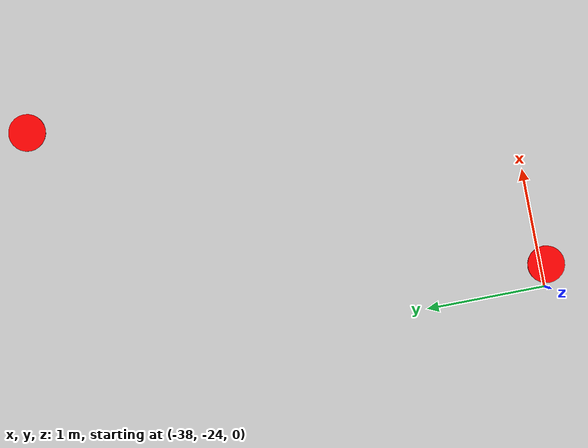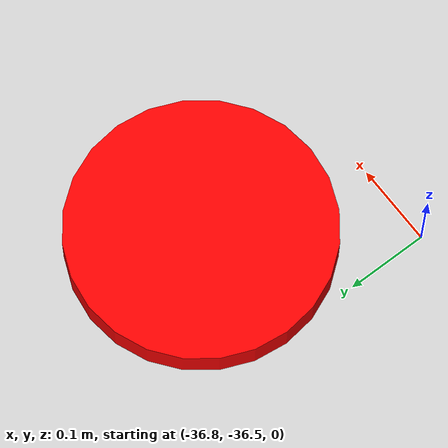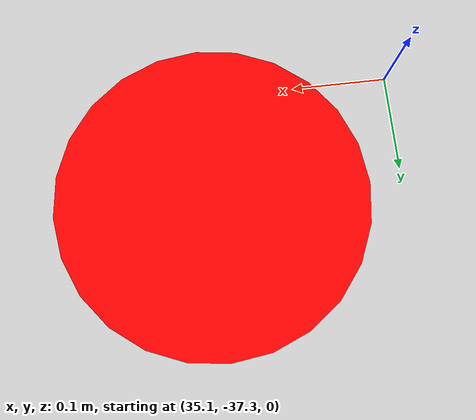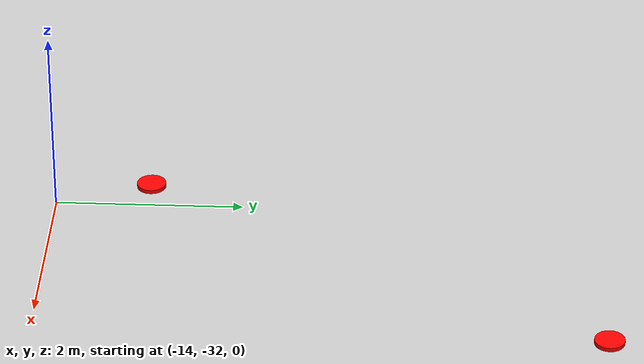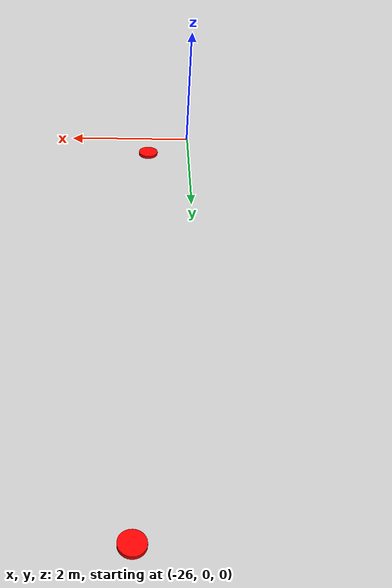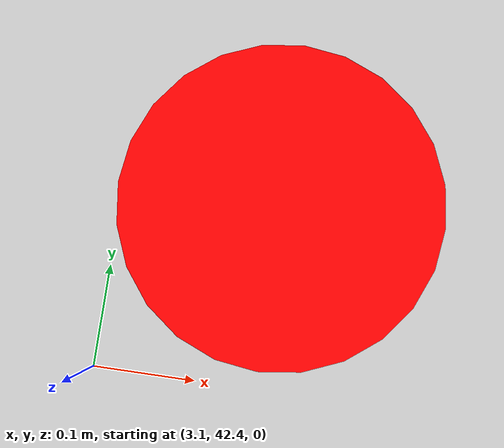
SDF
<?xml version='1.0' encoding='UTF-8'?>
<sdf version="1.7">
  <world name="disc_world">

    <plugin name="mrs_gazebo_static_transform_republisher_plugin"
            filename="libMrsGazeboCommonResources_StaticTransformRepublisher.so"/>

    <spherical_coordinates>
      <surface_model>EARTH_WGS84</surface_model>
      <latitude_deg>47.3977</latitude_deg>
      <longitude_deg>8.54559</longitude_deg>
      <elevation>0</elevation>
      <heading_deg>0</heading_deg>
    </spherical_coordinates>

    <physics name="default_physics" default="0" type="ode">
      <ode>
        <solver>
          <type>quick</type>
          <iters>10</iters>
          <sor>1.3</sor>
          <use_dynamic_moi_rescaling>0</use_dynamic_moi_rescaling>
        </solver>
        <constraints>
          <cfm>0</cfm>
          <erp>0.2</erp>
          <contact_max_correcting_vel>1000</contact_max_correcting_vel>
          <contact_surface_layer>0.001</contact_surface_layer>
        </constraints>
      </ode>
      <max_step_size>0.004</max_step_size>
      <real_time_factor>1</real_time_factor>
      <real_time_update_rate>250</real_time_update_rate>
    </physics>

    <scene>
      <shadows>false</shadows>
      <ambient>0.4 0.4 0.4 1</ambient>
      <background>0.7 0.7 0.7 1</background>
    </scene>

    <light name="sun" type="directional">
      <pose>0 0 1000 0.4 0.2 0</pose>
      <diffuse>1 1 1 1</diffuse>
      <specular>0.6 0.6 0.6 1</specular>
      <direction>0.1 0.1 -0.9</direction>
      <attenuation>
        <range>20</range>
        <constant>0.5</constant>
        <linear>0.01</linear>
        <quadratic>0.001</quadratic>
      </attenuation>
      <cast_shadows>1</cast_shadows>
    </light>

    <!-- Ground plane -->
    <model name="ground_plane">
      <static>1</static>
      <link name="link">
        <collision name="collision">
          <pose>0 0 0 0 0 0</pose>
          <geometry>
            <plane>
              <normal>0 0 1</normal>
              <size>250 250</size>
            </plane>
          </geometry>
          <surface>
            <friction>
              <ode><mu>1</mu><mu2>1</mu2></ode>
            </friction>
          </surface>
          <max_contacts>10</max_contacts>
        </collision>
        <visual name="visual">
          <pose>0 0 0 0 0 0</pose>
          <cast_shadows>0</cast_shadows>
          <geometry>
            <plane>
              <normal>0 0 1</normal>
              <size>250 250</size>
            </plane>
          </geometry>
          <material>
            <script>
              <uri>file://media/materials/scripts/gazebo.material</uri>
              <name>Gazebo/Grey</name>
            </script>
          </material>
        </visual>
      </link>
    </model>

    <plugin name="mrs_gazebo_rviz_cam_synchronizer"
            filename="libMrsGazeboCommonResources_RvizCameraSynchronizer.so">
      <target_frame_id>gazebo_user_camera</target_frame_id>
      <world_origin_frame_id>uav1/gps_origin</world_origin_frame_id>
      <frame_to_follow>uav1</frame_to_follow>
    </plugin>

    <gravity>0 0 -9.8066</gravity>
    <magnetic_field>6e-06 2.3e-05 -4.2e-05</magnetic_field>
    <atmosphere type="adiabatic"/>
    <wind/>

    <gui fullscreen="0">
      <camera name="camera">
        <pose>0 0 150 0 1.5707 0</pose>
        <view_controller>orbit</view_controller>
        <projection_type>perspective</projection_type>
      </camera>
    </gui>

    <!-- 25 Randomly Scattered Discs (seed=42, 100x100m area) -->

    <model name="disc_1">
      <static>true</static>
      <pose>12.55 -42.75 0.01 0 0 0</pose>
      <link name="link">
        <collision name="collision">
          <pose>0 0 0 0 0 0</pose>
          <geometry>
            <cylinder>
              <radius>0.15678</radius>
              <length>0.0579</length>
            </cylinder>
          </geometry>
          <max_contacts>10</max_contacts>
          <surface>
            <contact><ode/></contact>
            <bounce/>
            <friction><torsional><ode/></torsional><ode/></friction>
          </surface>
        </collision>
        <visual name="visual">
          <geometry>
            <cylinder>
              <radius>0.15678</radius>
              <length>0.0579</length>
            </cylinder>
          </geometry>
          <material>
            <ambient>1 0 0 1</ambient>
            <diffuse>1 0 0 1</diffuse>
            <specular>0.1 0.1 0.1 1</specular>
            <emissive>0.3 0 0 1</emissive>
          </material>
        </visual>
        <self_collide>0</self_collide>
        <enable_wind>0</enable_wind>
        <kinematic>0</kinematic>
      </link>
    </model>

    <model name="disc_2">
      <static>true</static>
      <pose>-20.25 -24.91 0.01 0 0 0</pose>
      <link name="link">
        <collision name="collision">
          <pose>0 0 0 0 0 0</pose>
          <geometry>
            <cylinder>
              <radius>0.15678</radius>
              <length>0.0579</length>
            </cylinder>
          </geometry>
          <max_contacts>10</max_contacts>
          <surface>
            <contact><ode/></contact>
            <bounce/>
            <friction><torsional><ode/></torsional><ode/></friction>
          </surface>
        </collision>
        <visual name="visual">
          <geometry>
            <cylinder>
              <radius>0.15678</radius>
              <length>0.0579</length>
            </cylinder>
          </geometry>
          <material>
            <ambient>1 0 0 1</ambient>
            <diffuse>1 0 0 1</diffuse>
            <specular>0.1 0.1 0.1 1</specular>
            <emissive>0.3 0 0 1</emissive>
          </material>
        </visual>
        <self_collide>0</self_collide>
        <enable_wind>0</enable_wind>
        <kinematic>0</kinematic>
      </link>
    </model>

    <model name="disc_3">
      <static>true</static>
      <pose>21.28 15.9 0.01 0 0 0</pose>
      <link name="link">
        <collision name="collision">
          <pose>0 0 0 0 0 0</pose>
          <geometry>
            <cylinder>
              <radius>0.15678</radius>
              <length>0.0579</length>
            </cylinder>
          </geometry>
          <max_contacts>10</max_contacts>
          <surface>
            <contact><ode/></contact>
            <bounce/>
            <friction><torsional><ode/></torsional><ode/></friction>
          </surface>
        </collision>
        <visual name="visual">
          <geometry>
            <cylinder>
              <radius>0.15678</radius>
              <length>0.0579</length>
            </cylinder>
          </geometry>
          <material>
            <ambient>1 0 0 1</ambient>
            <diffuse>1 0 0 1</diffuse>
            <specular>0.1 0.1 0.1 1</specular>
            <emissive>0.3 0 0 1</emissive>
          </material>
        </visual>
        <self_collide>0</self_collide>
        <enable_wind>0</enable_wind>
        <kinematic>0</kinematic>
      </link>
    </model>

    <model name="disc_4">
      <static>true</static>
      <pose>35.3 -37.18 0.01 0 0 0</pose>
      <link name="link">
        <collision name="collision">
          <pose>0 0 0 0 0 0</pose>
          <geometry>
            <cylinder>
              <radius>0.15678</radius>
              <length>0.0579</length>
            </cylinder>
          </geometry>
          <max_contacts>10</max_contacts>
          <surface>
            <contact><ode/></contact>
            <bounce/>
            <friction><torsional><ode/></torsional><ode/></friction>
          </surface>
        </collision>
        <visual name="visual">
          <geometry>
            <cylinder>
              <radius>0.15678</radius>
              <length>0.0579</length>
            </cylinder>
          </geometry>
          <material>
            <ambient>1 0 0 1</ambient>
            <diffuse>1 0 0 1</diffuse>
            <specular>0.1 0.1 0.1 1</specular>
            <emissive>0.3 0 0 1</emissive>
          </material>
        </visual>
        <self_collide>0</self_collide>
        <enable_wind>0</enable_wind>
        <kinematic>0</kinematic>
      </link>
    </model>

    <model name="disc_5">
      <static>true</static>
      <pose>-7.03 -42.32 0.01 0 0 0</pose>
      <link name="link">
        <collision name="collision">
          <pose>0 0 0 0 0 0</pose>
          <geometry>
            <cylinder>
              <radius>0.15678</radius>
              <length>0.0579</length>
            </cylinder>
          </geometry>
          <max_contacts>10</max_contacts>
          <surface>
            <contact><ode/></contact>
            <bounce/>
            <friction><torsional><ode/></torsional><ode/></friction>
          </surface>
        </collision>
        <visual name="visual">
          <geometry>
            <cylinder>
              <radius>0.15678</radius>
              <length>0.0579</length>
            </cylinder>
          </geometry>
          <material>
            <ambient>1 0 0 1</ambient>
            <diffuse>1 0 0 1</diffuse>
            <specular>0.1 0.1 0.1 1</specular>
            <emissive>0.3 0 0 1</emissive>
          </material>
        </visual>
        <self_collide>0</self_collide>
        <enable_wind>0</enable_wind>
        <kinematic>0</kinematic>
      </link>
    </model>

    <model name="disc_6">
      <static>true</static>
      <pose>-25.32 0.48 0.01 0 0 0</pose>
      <link name="link">
        <collision name="collision">
          <pose>0 0 0 0 0 0</pose>
          <geometry>
            <cylinder>
              <radius>0.15678</radius>
              <length>0.0579</length>
            </cylinder>
          </geometry>
          <max_contacts>10</max_contacts>
          <surface>
            <contact><ode/></contact>
            <bounce/>
            <friction><torsional><ode/></torsional><ode/></friction>
          </surface>
        </collision>
        <visual name="visual">
          <geometry>
            <cylinder>
              <radius>0.15678</radius>
              <length>0.0579</length>
            </cylinder>
          </geometry>
          <material>
            <ambient>1 0 0 1</ambient>
            <diffuse>1 0 0 1</diffuse>
            <specular>0.1 0.1 0.1 1</specular>
            <emissive>0.3 0 0 1</emissive>
          </material>
        </visual>
        <self_collide>0</self_collide>
        <enable_wind>0</enable_wind>
        <kinematic>0</kinematic>
      </link>
    </model>

    <model name="disc_7">
      <static>true</static>
      <pose>-42.61 -27.1 0.01 0 0 0</pose>
      <link name="link">
        <collision name="collision">
          <pose>0 0 0 0 0 0</pose>
          <geometry>
            <cylinder>
              <radius>0.15678</radius>
              <length>0.0579</length>
            </cylinder>
          </geometry>
          <max_contacts>10</max_contacts>
          <surface>
            <contact><ode/></contact>
            <bounce/>
            <friction><torsional><ode/></torsional><ode/></friction>
          </surface>
        </collision>
        <visual name="visual">
          <geometry>
            <cylinder>
              <radius>0.15678</radius>
              <length>0.0579</length>
            </cylinder>
          </geometry>
          <material>
            <ambient>1 0 0 1</ambient>
            <diffuse>1 0 0 1</diffuse>
            <specular>0.1 0.1 0.1 1</specular>
            <emissive>0.3 0 0 1</emissive>
          </material>
        </visual>
        <self_collide>0</self_collide>
        <enable_wind>0</enable_wind>
        <kinematic>0</kinematic>
      </link>
    </model>

    <model name="disc_8">
      <static>true</static>
      <pose>13.49 4.04 0.01 0 0 0</pose>
      <link name="link">
        <collision name="collision">
          <pose>0 0 0 0 0 0</pose>
          <geometry>
            <cylinder>
              <radius>0.15678</radius>
              <length>0.0579</length>
            </cylinder>
          </geometry>
          <max_contacts>10</max_contacts>
          <surface>
            <contact><ode/></contact>
            <bounce/>
            <friction><torsional><ode/></torsional><ode/></friction>
          </surface>
        </collision>
        <visual name="visual">
          <geometry>
            <cylinder>
              <radius>0.15678</radius>
              <length>0.0579</length>
            </cylinder>
          </geometry>
          <material>
            <ambient>1 0 0 1</ambient>
            <diffuse>1 0 0 1</diffuse>
            <specular>0.1 0.1 0.1 1</specular>
            <emissive>0.3 0 0 1</emissive>
          </material>
        </visual>
        <self_collide>0</self_collide>
        <enable_wind>0</enable_wind>
        <kinematic>0</kinematic>
      </link>
    </model>

    <model name="disc_9">
      <static>true</static>
      <pose>-25.16 8.03 0.01 0 0 0</pose>
      <link name="link">
        <collision name="collision">
          <pose>0 0 0 0 0 0</pose>
          <geometry>
            <cylinder>
              <radius>0.15678</radius>
              <length>0.0579</length>
            </cylinder>
          </geometry>
          <max_contacts>10</max_contacts>
          <surface>
            <contact><ode/></contact>
            <bounce/>
            <friction><torsional><ode/></torsional><ode/></friction>
          </surface>
        </collision>
        <visual name="visual">
          <geometry>
            <cylinder>
              <radius>0.15678</radius>
              <length>0.0579</length>
            </cylinder>
          </geometry>
          <material>
            <ambient>1 0 0 1</ambient>
            <diffuse>1 0 0 1</diffuse>
            <specular>0.1 0.1 0.1 1</specular>
            <emissive>0.3 0 0 1</emissive>
          </material>
        </visual>
        <self_collide>0</self_collide>
        <enable_wind>0</enable_wind>
        <kinematic>0</kinematic>
      </link>
    </model>

    <model name="disc_10">
      <static>true</static>
      <pose>27.85 -44.42 0.01 0 0 0</pose>
      <link name="link">
        <collision name="collision">
          <pose>0 0 0 0 0 0</pose>
          <geometry>
            <cylinder>
              <radius>0.15678</radius>
              <length>0.0579</length>
            </cylinder>
          </geometry>
          <max_contacts>10</max_contacts>
          <surface>
            <contact><ode/></contact>
            <bounce/>
            <friction><torsional><ode/></torsional><ode/></friction>
          </surface>
        </collision>
        <visual name="visual">
          <geometry>
            <cylinder>
              <radius>0.15678</radius>
              <length>0.0579</length>
            </cylinder>
          </geometry>
          <material>
            <ambient>1 0 0 1</ambient>
            <diffuse>1 0 0 1</diffuse>
            <specular>0.1 0.1 0.1 1</specular>
            <emissive>0.3 0 0 1</emissive>
          </material>
        </visual>
        <self_collide>0</self_collide>
        <enable_wind>0</enable_wind>
        <kinematic>0</kinematic>
      </link>
    </model>

    <model name="disc_11">
      <static>true</static>
      <pose>27.52 17.83 0.01 0 0 0</pose>
      <link name="link">
        <collision name="collision">
          <pose>0 0 0 0 0 0</pose>
          <geometry>
            <cylinder>
              <radius>0.15678</radius>
              <length>0.0579</length>
            </cylinder>
          </geometry>
          <max_contacts>10</max_contacts>
          <surface>
            <contact><ode/></contact>
            <bounce/>
            <friction><torsional><ode/></torsional><ode/></friction>
          </surface>
        </collision>
        <visual name="visual">
          <geometry>
            <cylinder>
              <radius>0.15678</radius>
              <length>0.0579</length>
            </cylinder>
          </geometry>
          <material>
            <ambient>1 0 0 1</ambient>
            <diffuse>1 0 0 1</diffuse>
            <specular>0.1 0.1 0.1 1</specular>
            <emissive>0.3 0 0 1</emissive>
          </material>
        </visual>
        <self_collide>0</self_collide>
        <enable_wind>0</enable_wind>
        <kinematic>0</kinematic>
      </link>
    </model>

    <model name="disc_12">
      <static>true</static>
      <pose>-14.38 -31.01 0.01 0 0 0</pose>
      <link name="link">
        <collision name="collision">
          <pose>0 0 0 0 0 0</pose>
          <geometry>
            <cylinder>
              <radius>0.15678</radius>
              <length>0.0579</length>
            </cylinder>
          </geometry>
          <max_contacts>10</max_contacts>
          <surface>
            <contact><ode/></contact>
            <bounce/>
            <friction><torsional><ode/></torsional><ode/></friction>
          </surface>
        </collision>
        <visual name="visual">
          <geometry>
            <cylinder>
              <radius>0.15678</radius>
              <length>0.0579</length>
            </cylinder>
          </geometry>
          <material>
            <ambient>1 0 0 1</ambient>
            <diffuse>1 0 0 1</diffuse>
            <specular>0.1 0.1 0.1 1</specular>
            <emissive>0.3 0 0 1</emissive>
          </material>
        </visual>
        <self_collide>0</self_collide>
        <enable_wind>0</enable_wind>
        <kinematic>0</kinematic>
      </link>
    </model>

    <model name="disc_13">
      <static>true</static>
      <pose>41.15 -14.71 0.01 0 0 0</pose>
      <link name="link">
        <collision name="collision">
          <pose>0 0 0 0 0 0</pose>
          <geometry>
            <cylinder>
              <radius>0.15678</radius>
              <length>0.0579</length>
            </cylinder>
          </geometry>
          <max_contacts>10</max_contacts>
          <surface>
            <contact><ode/></contact>
            <bounce/>
            <friction><torsional><ode/></torsional><ode/></friction>
          </surface>
        </collision>
        <visual name="visual">
          <geometry>
            <cylinder>
              <radius>0.15678</radius>
              <length>0.0579</length>
            </cylinder>
          </geometry>
          <material>
            <ambient>1 0 0 1</ambient>
            <diffuse>1 0 0 1</diffuse>
            <specular>0.1 0.1 0.1 1</specular>
            <emissive>0.3 0 0 1</emissive>
          </material>
        </visual>
        <self_collide>0</self_collide>
        <enable_wind>0</enable_wind>
        <kinematic>0</kinematic>
      </link>
    </model>

    <model name="disc_14">
      <static>true</static>
      <pose>-36.65 -36.3 0.01 0 0 0</pose>
      <link name="link">
        <collision name="collision">
          <pose>0 0 0 0 0 0</pose>
          <geometry>
            <cylinder>
              <radius>0.15678</radius>
              <length>0.0579</length>
            </cylinder>
          </geometry>
          <max_contacts>10</max_contacts>
          <surface>
            <contact><ode/></contact>
            <bounce/>
            <friction><torsional><ode/></torsional><ode/></friction>
          </surface>
        </collision>
        <visual name="visual">
          <geometry>
            <cylinder>
              <radius>0.15678</radius>
              <length>0.0579</length>
            </cylinder>
          </geometry>
          <material>
            <ambient>1 0 0 1</ambient>
            <diffuse>1 0 0 1</diffuse>
            <specular>0.1 0.1 0.1 1</specular>
            <emissive>0.3 0 0 1</emissive>
          </material>
        </visual>
        <self_collide>0</self_collide>
        <enable_wind>0</enable_wind>
        <kinematic>0</kinematic>
      </link>
    </model>

    <model name="disc_15">
      <static>true</static>
      <pose>31.27 9.34 0.01 0 0 0</pose>
      <link name="link">
        <collision name="collision">
          <pose>0 0 0 0 0 0</pose>
          <geometry>
            <cylinder>
              <radius>0.15678</radius>
              <length>0.0579</length>
            </cylinder>
          </geometry>
          <max_contacts>10</max_contacts>
          <surface>
            <contact><ode/></contact>
            <bounce/>
            <friction><torsional><ode/></torsional><ode/></friction>
          </surface>
        </collision>
        <visual name="visual">
          <geometry>
            <cylinder>
              <radius>0.15678</radius>
              <length>0.0579</length>
            </cylinder>
          </geometry>
          <material>
            <ambient>1 0 0 1</ambient>
            <diffuse>1 0 0 1</diffuse>
            <specular>0.1 0.1 0.1 1</specular>
            <emissive>0.3 0 0 1</emissive>
          </material>
        </visual>
        <self_collide>0</self_collide>
        <enable_wind>0</enable_wind>
        <kinematic>0</kinematic>
      </link>
    </model>

    <model name="disc_16">
      <static>true</static>
      <pose>3.26 42.58 0.01 0 0 0</pose>
      <link name="link">
        <collision name="collision">
          <pose>0 0 0 0 0 0</pose>
          <geometry>
            <cylinder>
              <radius>0.15678</radius>
              <length>0.0579</length>
            </cylinder>
          </geometry>
          <max_contacts>10</max_contacts>
          <surface>
            <contact><ode/></contact>
            <bounce/>
            <friction><torsional><ode/></torsional><ode/></friction>
          </surface>
        </collision>
        <visual name="visual">
          <geometry>
            <cylinder>
              <radius>0.15678</radius>
              <length>0.0579</length>
            </cylinder>
          </geometry>
          <material>
            <ambient>1 0 0 1</ambient>
            <diffuse>1 0 0 1</diffuse>
            <specular>0.1 0.1 0.1 1</specular>
            <emissive>0.3 0 0 1</emissive>
          </material>
        </visual>
        <self_collide>0</self_collide>
        <enable_wind>0</enable_wind>
        <kinematic>0</kinematic>
      </link>
    </model>

    <model name="disc_17">
      <static>true</static>
      <pose>-10.93 4.68 0.01 0 0 0</pose>
      <link name="link">
        <collision name="collision">
          <pose>0 0 0 0 0 0</pose>
          <geometry>
            <cylinder>
              <radius>0.15678</radius>
              <length>0.0579</length>
            </cylinder>
          </geometry>
          <max_contacts>10</max_contacts>
          <surface>
            <contact><ode/></contact>
            <bounce/>
            <friction><torsional><ode/></torsional><ode/></friction>
          </surface>
        </collision>
        <visual name="visual">
          <geometry>
            <cylinder>
              <radius>0.15678</radius>
              <length>0.0579</length>
            </cylinder>
          </geometry>
          <material>
            <ambient>1 0 0 1</ambient>
            <diffuse>1 0 0 1</diffuse>
            <specular>0.1 0.1 0.1 1</specular>
            <emissive>0.3 0 0 1</emissive>
          </material>
        </visual>
        <self_collide>0</self_collide>
        <enable_wind>0</enable_wind>
        <kinematic>0</kinematic>
      </link>
    </model>

    <model name="disc_18">
      <static>true</static>
      <pose>18.41 -40.88 0.01 0 0 0</pose>
      <link name="link">
        <collision name="collision">
          <pose>0 0 0 0 0 0</pose>
          <geometry>
            <cylinder>
              <radius>0.15678</radius>
              <length>0.0579</length>
            </cylinder>
          </geometry>
          <max_contacts>10</max_contacts>
          <surface>
            <contact><ode/></contact>
            <bounce/>
            <friction><torsional><ode/></torsional><ode/></friction>
          </surface>
        </collision>
        <visual name="visual">
          <geometry>
            <cylinder>
              <radius>0.15678</radius>
              <length>0.0579</length>
            </cylinder>
          </geometry>
          <material>
            <ambient>1 0 0 1</ambient>
            <diffuse>1 0 0 1</diffuse>
            <specular>0.1 0.1 0.1 1</specular>
            <emissive>0.3 0 0 1</emissive>
          </material>
        </visual>
        <self_collide>0</self_collide>
        <enable_wind>0</enable_wind>
        <kinematic>0</kinematic>
      </link>
    </model>

    <model name="disc_19">
      <static>true</static>
      <pose>-24.49 -18.96 0.01 0 0 0</pose>
      <link name="link">
        <collision name="collision">
          <pose>0 0 0 0 0 0</pose>
          <geometry>
            <cylinder>
              <radius>0.15678</radius>
              <length>0.0579</length>
            </cylinder>
          </geometry>
          <max_contacts>10</max_contacts>
          <surface>
            <contact><ode/></contact>
            <bounce/>
            <friction><torsional><ode/></torsional><ode/></friction>
          </surface>
        </collision>
        <visual name="visual">
          <geometry>
            <cylinder>
              <radius>0.15678</radius>
              <length>0.0579</length>
            </cylinder>
          </geometry>
          <material>
            <ambient>1 0 0 1</ambient>
            <diffuse>1 0 0 1</diffuse>
            <specular>0.1 0.1 0.1 1</specular>
            <emissive>0.3 0 0 1</emissive>
          </material>
        </visual>
        <self_collide>0</self_collide>
        <enable_wind>0</enable_wind>
        <kinematic>0</kinematic>
      </link>
    </model>

    <model name="disc_20">
      <static>true</static>
      <pose>-37.82 -24.05 0.01 0 0 0</pose>
      <link name="link">
        <collision name="collision">
          <pose>0 0 0 0 0 0</pose>
          <geometry>
            <cylinder>
              <radius>0.15678</radius>
              <length>0.0579</length>
            </cylinder>
          </geometry>
          <max_contacts>10</max_contacts>
          <surface>
            <contact><ode/></contact>
            <bounce/>
            <friction><torsional><ode/></torsional><ode/></friction>
          </surface>
        </collision>
        <visual name="visual">
          <geometry>
            <cylinder>
              <radius>0.15678</radius>
              <length>0.0579</length>
            </cylinder>
          </geometry>
          <material>
            <ambient>1 0 0 1</ambient>
            <diffuse>1 0 0 1</diffuse>
            <specular>0.1 0.1 0.1 1</specular>
            <emissive>0.3 0 0 1</emissive>
          </material>
        </visual>
        <self_collide>0</self_collide>
        <enable_wind>0</enable_wind>
        <kinematic>0</kinematic>
      </link>
    </model>

    <model name="disc_21">
      <static>true</static>
      <pose>-35.91 -19.98 0.01 0 0 0</pose>
      <link name="link">
        <collision name="collision">
          <pose>0 0 0 0 0 0</pose>
          <geometry>
            <cylinder>
              <radius>0.15678</radius>
              <length>0.0579</length>
            </cylinder>
          </geometry>
          <max_contacts>10</max_contacts>
          <surface>
            <contact><ode/></contact>
            <bounce/>
            <friction><torsional><ode/></torsional><ode/></friction>
          </surface>
        </collision>
        <visual name="visual">
          <geometry>
            <cylinder>
              <radius>0.15678</radius>
              <length>0.0579</length>
            </cylinder>
          </geometry>
          <material>
            <ambient>1 0 0 1</ambient>
            <diffuse>1 0 0 1</diffuse>
            <specular>0.1 0.1 0.1 1</specular>
            <emissive>0.3 0 0 1</emissive>
          </material>
        </visual>
        <self_collide>0</self_collide>
        <enable_wind>0</enable_wind>
        <kinematic>0</kinematic>
      </link>
    </model>

    <model name="disc_22">
      <static>true</static>
      <pose>12.21 -12.17 0.01 0 0 0</pose>
      <link name="link">
        <collision name="collision">
          <pose>0 0 0 0 0 0</pose>
          <geometry>
            <cylinder>
              <radius>0.15678</radius>
              <length>0.0579</length>
            </cylinder>
          </geometry>
          <max_contacts>10</max_contacts>
          <surface>
            <contact><ode/></contact>
            <bounce/>
            <friction><torsional><ode/></torsional><ode/></friction>
          </surface>
        </collision>
        <visual name="visual">
          <geometry>
            <cylinder>
              <radius>0.15678</radius>
              <length>0.0579</length>
            </cylinder>
          </geometry>
          <material>
            <ambient>1 0 0 1</ambient>
            <diffuse>1 0 0 1</diffuse>
            <specular>0.1 0.1 0.1 1</specular>
            <emissive>0.3 0 0 1</emissive>
          </material>
        </visual>
        <self_collide>0</self_collide>
        <enable_wind>0</enable_wind>
        <kinematic>0</kinematic>
      </link>
    </model>

    <model name="disc_23">
      <static>true</static>
      <pose>-11.68 -26.14 0.01 0 0 0</pose>
      <link name="link">
        <collision name="collision">
          <pose>0 0 0 0 0 0</pose>
          <geometry>
            <cylinder>
              <radius>0.15678</radius>
              <length>0.0579</length>
            </cylinder>
          </geometry>
          <max_contacts>10</max_contacts>
          <surface>
            <contact><ode/></contact>
            <bounce/>
            <friction><torsional><ode/></torsional><ode/></friction>
          </surface>
        </collision>
        <visual name="visual">
          <geometry>
            <cylinder>
              <radius>0.15678</radius>
              <length>0.0579</length>
            </cylinder>
          </geometry>
          <material>
            <ambient>1 0 0 1</ambient>
            <diffuse>1 0 0 1</diffuse>
            <specular>0.1 0.1 0.1 1</specular>
            <emissive>0.3 0 0 1</emissive>
          </material>
        </visual>
        <self_collide>0</self_collide>
        <enable_wind>0</enable_wind>
        <kinematic>0</kinematic>
      </link>
    </model>

    <model name="disc_24">
      <static>true</static>
      <pose>-20.97 39.3 0.01 0 0 0</pose>
      <link name="link">
        <collision name="collision">
          <pose>0 0 0 0 0 0</pose>
          <geometry>
            <cylinder>
              <radius>0.15678</radius>
              <length>0.0579</length>
            </cylinder>
          </geometry>
          <max_contacts>10</max_contacts>
          <surface>
            <contact><ode/></contact>
            <bounce/>
            <friction><torsional><ode/></torsional><ode/></friction>
          </surface>
        </collision>
        <visual name="visual">
          <geometry>
            <cylinder>
              <radius>0.15678</radius>
              <length>0.0579</length>
            </cylinder>
          </geometry>
          <material>
            <ambient>1 0 0 1</ambient>
            <diffuse>1 0 0 1</diffuse>
            <specular>0.1 0.1 0.1 1</specular>
            <emissive>0.3 0 0 1</emissive>
          </material>
        </visual>
        <self_collide>0</self_collide>
        <enable_wind>0</enable_wind>
        <kinematic>0</kinematic>
      </link>
    </model>

    <model name="disc_25">
      <static>true</static>
      <pose>13.32 9.82 0.01 0 0 0</pose>
      <link name="link">
        <collision name="collision">
          <pose>0 0 0 0 0 0</pose>
          <geometry>
            <cylinder>
              <radius>0.15678</radius>
              <length>0.0579</length>
            </cylinder>
          </geometry>
          <max_contacts>10</max_contacts>
          <surface>
            <contact><ode/></contact>
            <bounce/>
            <friction><torsional><ode/></torsional><ode/></friction>
          </surface>
        </collision>
        <visual name="visual">
          <geometry>
            <cylinder>
              <radius>0.15678</radius>
              <length>0.0579</length>
            </cylinder>
          </geometry>
          <material>
            <ambient>1 0 0 1</ambient>
            <diffuse>1 0 0 1</diffuse>
            <specular>0.1 0.1 0.1 1</specular>
            <emissive>0.3 0 0 1</emissive>
          </material>
        </visual>
        <self_collide>0</self_collide>
        <enable_wind>0</enable_wind>
        <kinematic>0</kinematic>
      </link>
    </model>

  </world>
</sdf>
